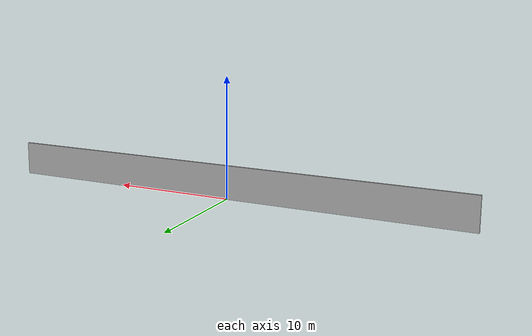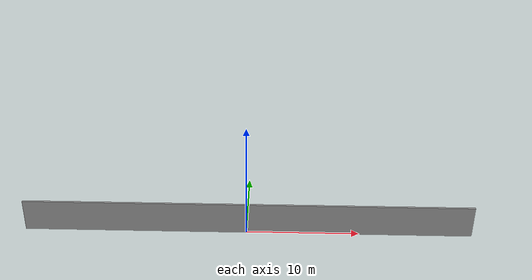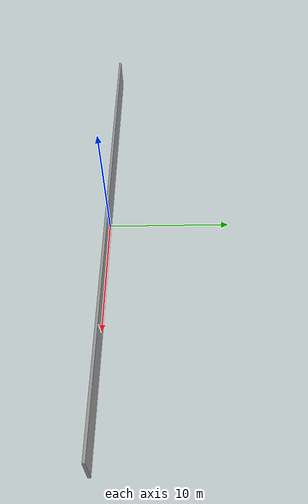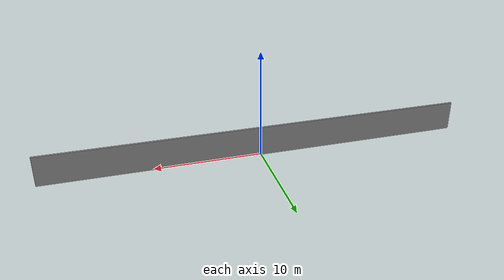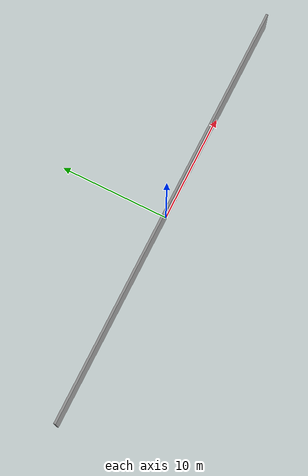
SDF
<?xml version="1.0" ?>
<sdf version="1.5">
  <model name="grey_wall">
    <static>true</static>
    <link name="link">
      <pose>0 0 1.4 0 0 0</pose>
      <collision name="collision">
        <geometry>
          <box>
            <size>40 0.2 2.8</size>
          </box>
        </geometry>
      </collision>
      <visual name="visual">
        <cast_shadows>false</cast_shadows>
        <geometry>
          <box>
            <size>40 0.2 2.8</size>
          </box>
        </geometry>
        <material>
          <script>
            <uri>model://w1/materials/scripts</uri>
            <uri>model://w1/materials/textures</uri>
            <name>vrc/grey_wall</name>
          </script>
        </material>
      </visual>
    </link>
  </model>
</sdf>
